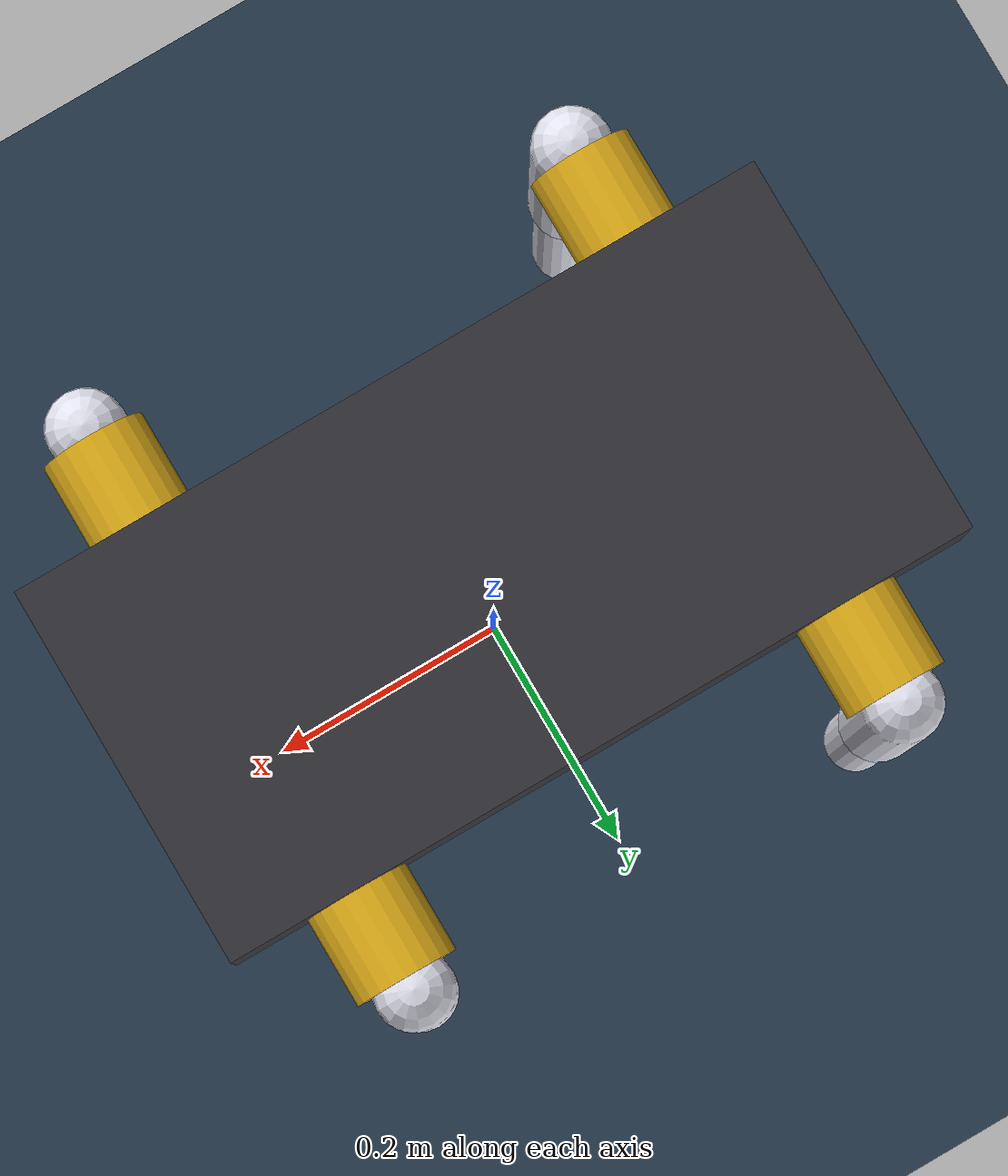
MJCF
<mujoco model="metallic_quadruped">
  <compiler angle="degree" coordinate="local"/>

  <option timestep="0.005" gravity="0 0 -9.81"/>

  <asset>
    <!-- Procedural textures for reflections -->
    <texture type="skybox" builtin="gradient" rgb1="0.3 0.5 0.7" rgb2="0 0 0" width="512" height="512"/>
    <texture name="tex_floor" type="2d" builtin="checker" rgb1="0.2 0.3 0.4" rgb2="0.1 0.15 0.2" width="512" height="512" mark="cross" markrgb="0.8 0.8 0.8"/>

    <!-- Floor material -->
    <material name="mat_floor" texture="tex_floor" texrepeat="5 5" reflectance="0.2" specular="0.2" shininess="0.1"/>

    <!-- METALLIC MATERIALS -->
    <!-- High specular and shininess create sharp highlights. Reflectance mirrors the environment. -->
    <material name="polished_aluminum" rgba="0.9 0.9 0.95 1" specular="1.0" shininess="0.9" reflectance="0.5"/>
    <material name="anodized_gold" rgba="0.9 0.7 0.1 1" specular="0.8" shininess="0.8" reflectance="0.3"/>
    <material name="matte_dark_metal" rgba="0.2 0.2 0.22 1" specular="0.5" shininess="0.3" reflectance="0.1"/>
  </asset>

  <default>
    <joint type="hinge" limited="true" range="-60 60" damping="0.5"/>
    <geom contype="1" conaffinity="1" condim="3" friction="1 0.1 0.1"/>
    <!-- Default leg geometries to polished aluminum -->
    <default class="leg_link">
      <geom type="capsule" material="polished_aluminum" mass="1"/>
    </default>
  </default>

  <worldbody>
    <!-- STUDIO LIGHTING SETUP -->
    <!-- Main key light casting shadows -->
    <light directional="true" diffuse="0.8 0.8 0.8" specular="0.5 0.5 0.5" pos="0 0 5" dir="0 -1 -1" castshadow="true"/>
    <!-- Fill light to illuminate the dark side -->
    <light directional="true" diffuse="0.3 0.3 0.4" specular="0.2 0.2 0.2" pos="0 3 3" dir="0 -1 -1" castshadow="false"/>
    <!-- Rim light from below to catch the metallic edges -->
    <light directional="false" diffuse="0.2 0.2 0.2" pos="0 0 0.5" dir="0 0 1" castshadow="false"/>

    <!-- Floor -->
    <geom name="floor" type="plane" size="5 5 0.1" material="mat_floor"/>

    <!-- QUADRUPED ROBOT -->
    <body name="torso" pos="0 0 0.6">
      <!-- Free joint allows the robot to move around the world -->
      <freejoint name="root"/>
      <geom name="chassis" type="box" size="0.3 0.15 0.05" material="matte_dark_metal" mass="5"/>

      <!-- Front Left Leg -->
      <body name="fl_hip" pos="0.2 0.18 0">
        <joint name="fl_hip_joint" axis="1 0 0" range="-30 30"/>
        <geom type="cylinder" size="0.04 0.04" material="anodized_gold" euler="90 0 0"/>
        <body name="fl_thigh" pos="0 0.05 0">
          <joint name="fl_thigh_joint" axis="0 1 0" range="-45 45"/>
          <geom class="leg_link" size="0.03" fromto="0 0 0 0 0 -0.25"/>
          <body name="fl_calf" pos="0 0 -0.25">
            <joint name="fl_calf_joint" axis="0 1 0" range="-120 -30"/>
            <geom class="leg_link" size="0.025" fromto="0 0 0 0 0 -0.25"/>
          </body>
        </body>
      </body>

      <!-- Front Right Leg -->
      <body name="fr_hip" pos="0.2 -0.18 0">
        <joint name="fr_hip_joint" axis="1 0 0" range="-30 30"/>
        <geom type="cylinder" size="0.04 0.04" material="anodized_gold" euler="90 0 0"/>
        <body name="fr_thigh" pos="0 -0.05 0">
          <joint name="fr_thigh_joint" axis="0 1 0" range="-45 45"/>
          <geom class="leg_link" size="0.03" fromto="0 0 0 0 0 -0.25"/>
          <body name="fr_calf" pos="0 0 -0.25">
            <joint name="fr_calf_joint" axis="0 1 0" range="-120 -30"/>
            <geom class="leg_link" size="0.025" fromto="0 0 0 0 0 -0.25"/>
          </body>
        </body>
      </body>

      <!-- Back Left Leg -->
      <body name="bl_hip" pos="-0.2 0.18 0">
        <joint name="bl_hip_joint" axis="1 0 0" range="-30 30"/>
        <geom type="cylinder" size="0.04 0.04" material="anodized_gold" euler="90 0 0"/>
        <body name="bl_thigh" pos="0 0.05 0">
          <joint name="bl_thigh_joint" axis="0 1 0" range="-45 45"/>
          <geom class="leg_link" size="0.03" fromto="0 0 0 0 0 -0.25"/>
          <body name="bl_calf" pos="0 0 -0.25">
            <joint name="bl_calf_joint" axis="0 1 0" range="-120 -30"/>
            <geom class="leg_link" size="0.025" fromto="0 0 0 0 0 -0.25"/>
          </body>
        </body>
      </body>

      <!-- Back Right Leg -->
      <body name="br_hip" pos="-0.2 -0.18 0">
        <joint name="br_hip_joint" axis="1 0 0" range="-30 30"/>
        <geom type="cylinder" size="0.04 0.04" material="anodized_gold" euler="90 0 0"/>
        <body name="br_thigh" pos="0 -0.05 0">
          <joint name="br_thigh_joint" axis="0 1 0" range="-45 45"/>
          <geom class="leg_link" size="0.03" fromto="0 0 0 0 0 -0.25"/>
          <body name="br_calf" pos="0 0 -0.25">
            <joint name="br_calf_joint" axis="0 1 0" range="-120 -30"/>
            <geom class="leg_link" size="0.025" fromto="0 0 0 0 0 -0.25"/>
          </body>
        </body>
      </body>

    </body>
  </worldbody>
</mujoco>
